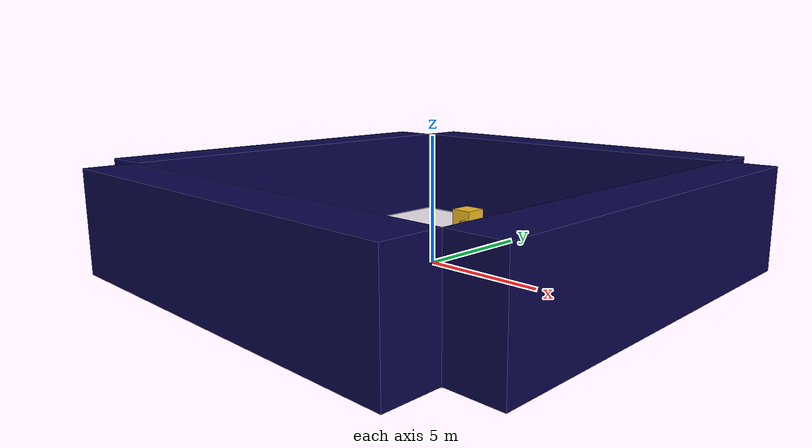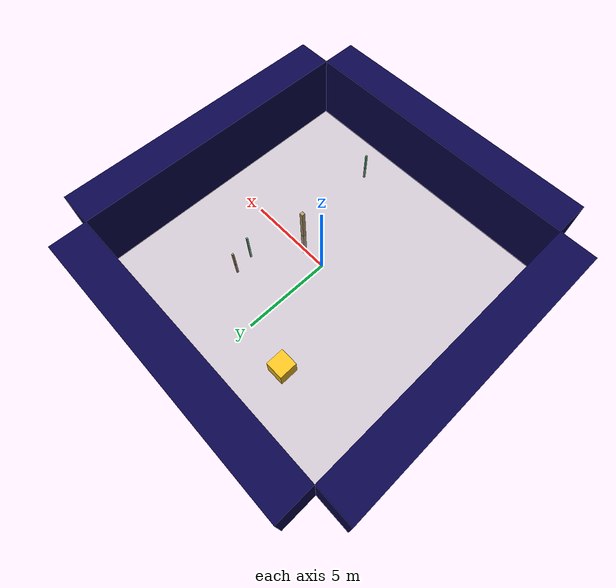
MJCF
<mujoco model="unnamed_model">
  <default>
    <default class="/" />
    <default class="border/" />
    <default class="border_1/" />
    <default class="border_2/" />
    <default class="border_3/" />
    <default class="light/" />
    <default class="agent/" />
    <default class="apple0/" />
    <default class="apple1/" />
    <default class="stone/" />
    <default class="stone_1/" />
  </default>
  <worldbody>
    <body name="border/">
      <body name="border/border" pos="0 9 2">
        <geom name="border/border_geom" class="border/" type="box" size="8.0 1.0 2.0" rgba="0.035 0.016 0.29 1.0" />
      </body>
    </body>
    <body name="border_1/">
      <body name="border_1/border" pos="0 -9 2">
        <geom name="border_1/border_geom" class="border_1/" type="box" size="8.0 1.0 2.0" rgba="0.035 0.016 0.29 1.0" />
      </body>
    </body>
    <body name="border_2/">
      <body name="border_2/border" pos="9 0 2">
        <geom name="border_2/border_geom" class="border_2/" type="box" size="1.0 8.0 2.0" rgba="0.035 0.016 0.29 1.0" />
      </body>
    </body>
    <body name="border_3/">
      <body name="border_3/border" pos="-9 0 2">
        <geom name="border_3/border_geom" class="border_3/" type="box" size="1.0 8.0 2.0" rgba="0.035 0.016 0.29 1.0" />
      </body>
    </body>
    <body name="light/">
      <body name="light/light" pos="0 0 15">
        <geom name="light/light_geom" class="light/" size="0.5" rgba="1.0 1.0 1.0 0.0" />
        <light name="light//unnamed_light_0" class="light/" />
      </body>
    </body>
    <body euler="0 0 270.47135900816033" name="agent/">
      <joint name="agent/boxagent_freeJoint/" class="/" type="free" />
      <body name="agent/agent" pos="-5.3636499999999998 -2.7837999999999994 0.5" euler="0 0 0">
        <geom name="agent/boxagent_geom" class="agent/" type="box" size="0.5 0.5 0.5" rgba="0.949 0.7451 0.1333 1.0" euler="0 0 0" />
        <camera name="agent/boxagent_camera" class="agent/" pos="1 0 0.5" euler="90 0 0" />
      </body>
    </body>
    <body name="apple0/">
      <body name="apple0/apple0" pos="3.3130500000000001 3.3100000000000005 0.10000000000000001" euler="0 0 98.917989406300421">
        <geom name="apple0/apple_geom" class="apple0/" type="box" size="0.05 0.05 1.0" rgba="0.6980392156862745 0.6 0.43137254901960786 1.0" />
      </body>
    </body>
    <body name="apple1/">
      <body name="apple1/apple1" pos="2.1512500000000001 -0.62990000000000013 0.10000000000000001" euler="0 0 86.26857701076699">
        <geom name="apple1/apple_geom" class="apple1/" type="box" size="0.1 0.1 2.0" rgba="0.6980392156862745 0.6 0.43137254901960786 1.0" />
      </body>
    </body>
    <body name="stone/">
      <body name="stone/stone" pos="3.5450499999999998 2.1469000000000005 0.10000000000000001" euler="0 0 167.47015378349084">
        <geom name="stone/stone_geom" class="stone/" type="box" size="0.05 0.05 1.0" rgba="0.396078431372549 0.6705882352941176 0.48627450980392156 1.0" />
      </body>
    </body>
    <body name="stone_1/">
      <body name="stone_1/stone" pos="3.0358499999999999 -6.4935999999999998 0.10000000000000001" euler="0 0 -97.254786290027567">
        <geom name="stone_1/stone_geom" class="stone_1/" type="box" size="0.05 0.05 1.0" rgba="0.396078431372549 0.6705882352941176 0.48627450980392156 1.0" />
      </body>
    </body>
    <geom name="base_plane" class="/" type="plane" size="8 8 0.10000000000000001" />
  </worldbody>
</mujoco>
